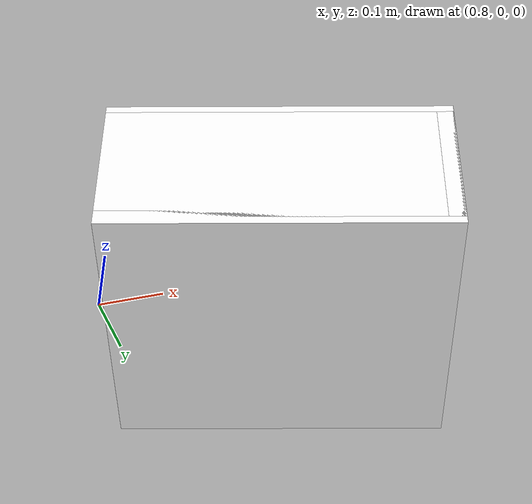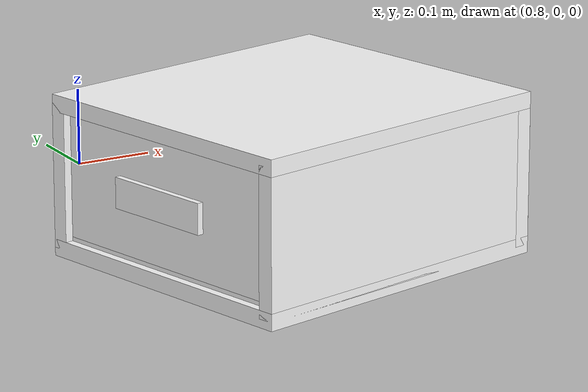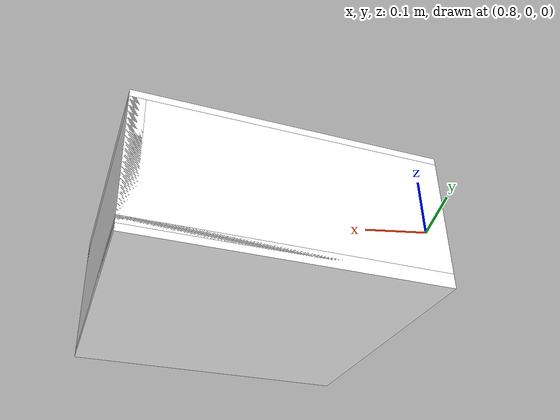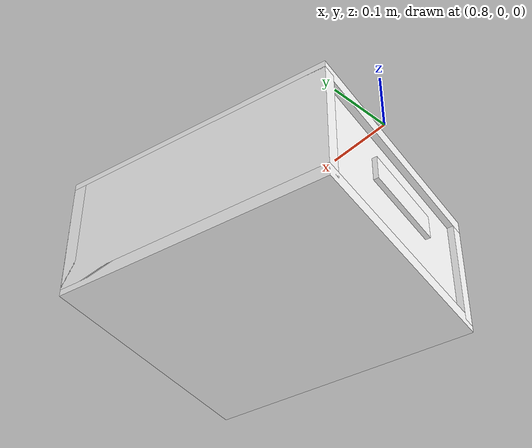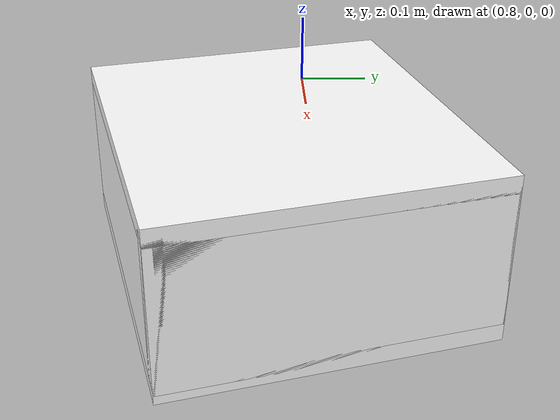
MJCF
<mujoco model="drawer">
        <compiler angle="radian" eulerseq='zxy' />
        <option gravity = "0 0 0" />
        <option>
            <flag contact = "disable"/>
        </option>
        <statistic	extent="1.0" center="0.0 0.0 0.0"/>
        <visual>
            <map fogstart="3" fogend="5" force="0.1" znear=" 0.100000 " zfar=" 12.000000 "/>
        </visual>
        <size njmax="500" nconmax="100" />
        <actuator>
            <velocity joint="drawerJ" name="viva_revolution" kv='10'></velocity>
        </actuator>
        <asset>
            <texture builtin="flat" name="objtex" height="32" width="32" rgb1="1 1 1" type="cube"></texture>
            <texture builtin="flat" name="handletex" height="32" width="32" rgb1="1 1 1" type="cube"></texture>
            <material name="geomObj" shininess="0.03" specular="0.75" texture="objtex"></material>
            <material name="geomHandle" shininess="0.03" specular="0.75" texture="handletex"></material>
        </asset>
        <worldbody>
            <body name="cabinet_bottom" pos= " 1.091861 -0.045668 -0.145466 "  quat= " -0.120641 0.000000 0.000000 0.992696" >
                <inertial pos="0 0 0" mass="1" diaginertia="1 1 1" />
                <geom size= " 0.235833 0.213393 0.011563 "  type="box" material="geomObj" name="b"/>
                <body name="cabinet_left" pos= " 0.000000 -0.201830 0.100892 " >
                    <inertial pos="0 0 0" mass="1" diaginertia="1 1 1" />
                    <geom size= " 0.235833 0.011563 0.100892 "  type="box" material="geomObj" name="c" />
                </body>
                <body name="cabinet_right" pos= " 0.000000 0.201830 0.100892 " >
                    <inertial pos="0 0 0" mass="1" diaginertia="1 1 1" />
                    <geom size= " 0.235833 0.011563 0.100892 "  type="box" material="geomObj" name="d" />
                </body>
                <body name="cabinet_top" pos= " 0.000000 0.000000 0.201784 " >
                    <inertial pos="0 0 0" mass="1" diaginertia="1 1 1" />
                    <geom size= " 0.235833 0.213393 0.011563 "  type="box" material="geomObj" name="e"/>
                </body>
                <body name="cabinet_back" pos= " -0.224270 0.000000 0.100892 "  >
                    <inertial pos="0 0 0" mass="1" diaginertia="1 1 1" />
                    <geom size= " 0.011563 0.213393 0.100892 "  type="box" material="geomObj" name="f" />
                </body>
                <body name="drawer" pos= " 0.000000 0.000000 0.005781 "  >
                    <geom size= " 0.224270 0.201830 0.011563 "  type="box" material="geomObj" name="ddddfadfadsfac" />
                    <joint name="drawerJ" pos="0 0 0" axis="1 0 0" type="slide" limited="true" range= "0  0.35374966263771057 "  />
                    <inertial pos="0 0 0" mass="1" diaginertia="1 1 1" />
                    <body name="drawer_left" pos= " 0.000000 -0.190267 0.100892 " >
                        <inertial pos="0 0 0" mass="1" diaginertia="1 1 1" />
                        <geom size= " 0.224270 0.011563 0.089329 "  type="box" material="geomObj" name="ddc" />
                    </body>
                    <body name="drawer_right" pos= " 0.000000 0.190267 0.100892 " >
                        <inertial pos="0 0 0" mass="1" diaginertia="1 1 1" />
                        <geom size= " 0.224270 0.011563 0.089329 "  type="box" material="geomObj" name="dddd" />
                    </body>
                    <body name="drawer_front" pos= " 0.212708 0.000000 0.100892 " >
                        <inertial pos="0 0 0" mass="1" diaginertia="1 1 1" />
                        <geom size= " 0.011563 0.201830 0.089329 "  type="box" material="geomObj" name="eeeee"/>
                    </body>
                    <body name="drawer_back" pos= " -0.224270 0.000000 0.100892 "  >
                        <inertial pos="0 0 0" mass="1" diaginertia="1 1 1" />
                        <geom size= " 0.011563 0.201830 0.089329 "  type="box" material="geomObj" name="fffff" />
                    </body>
                    <body name="knob" pos= " 0.235833 0.000000 0.100892 " >
                        <inertial pos="0 0 0" mass="0.1" diaginertia="0.1 0.1 0.1" />
                        <geom size= " 0.004304 0.080696 0.021298 "  pos="0 0 0" type="box" material="geomHandle" name="handle"/>
                    </body>
                </body>
            </body>
            <body name="external_camera_body_0" pos="0.0 0 0.00">
                <camera euler="-1.57 1.57 0.0" fovy=" 54.280851 " name="external_camera_0" pos="0.0 0 0"></camera>
                <inertial pos= " 0.00 0.0 0.000000 " mass="1" diaginertia="1 1 1" />
                <joint name="cam_j" pos="0.0 0 0" axis = "1 0 0" type="free" />
            </body>
        </worldbody>
    </mujoco>
